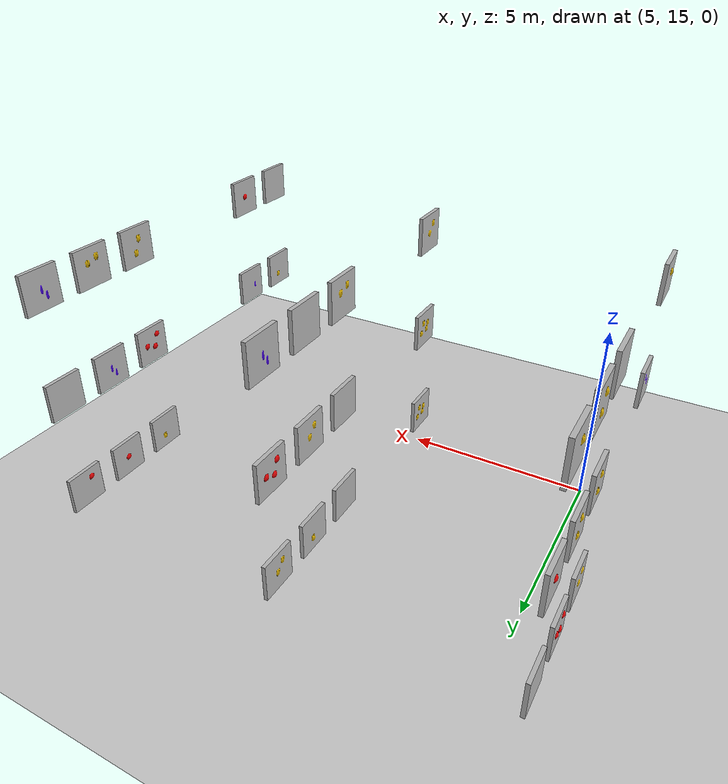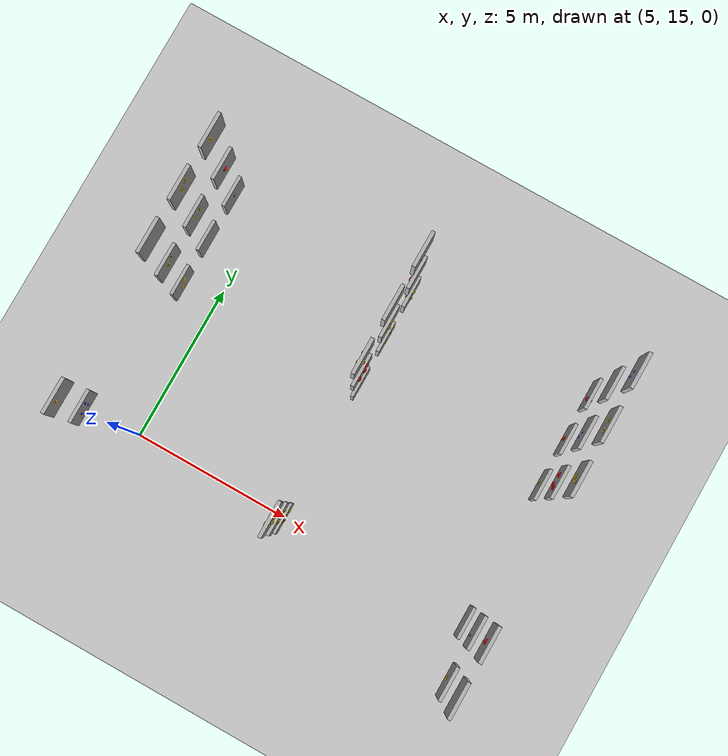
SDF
<sdf version="1.7">
 <world name="default">
  <model name="ground_plane">
   <static>1</static>
   <link name="link">
    <collision name="collision">
     <geometry><plane><normal>0 0 1</normal><size>100 100</size></plane></geometry>
     <surface>
      <contact><collide_bitmask>65535</collide_bitmask></contact>
      <friction><ode><mu>100</mu><mu2>50</mu2></ode></friction>
     </surface>
    </collision>
    <visual name="visual">
     <cast_shadows>0</cast_shadows>
     <geometry><plane><normal>0 0 1</normal><size>100 100</size></plane></geometry>
     <material>
      <script><uri>file://media/materials/scripts/gazebo.material</uri><name>Gazebo/Grey</name></script>
     </material>
    </visual>
   </link>
  </model>
  <model name="plant_6">
   <link name="eggplant_4">
    <inertial>
     <mass>1</mass>
     <inertia><ixx>10</ixx><ixy>0</ixy><ixz>0</ixz><iyy>10</iyy><iyz>0</iyz><izz>10</izz></inertia>
    </inertial>
    <collision name="eggplant_4_collision">
     <geometry>
      <mesh>
       <scale>1 1 1</scale>
       <uri>/root/sim_ws/src/icuas24_competition/models/eggplant_4/eggplant_4.dae</uri>
      </mesh>
     </geometry>
    </collision>
    <visual name="eggplant_4_visual">
     <geometry>
      <mesh>
       <scale>1 1 1</scale>
       <uri>/root/sim_ws/src/icuas24_competition/models/eggplant_4/eggplant_4.dae</uri>
      </mesh>
     </geometry>
    </visual>
   </link>
   <static>1</static>
   <pose>4 15 3.9 0 0 -1.5707</pose>
  </model>
  <model name="plant_9">
   <link name="pepper_1">
    <inertial>
     <mass>1</mass>
     <inertia><ixx>10</ixx><ixy>0</ixy><ixz>0</ixz><iyy>10</iyy><iyz>0</iyz><izz>10</izz></inertia>
    </inertial>
    <collision name="pepper_1_collision">
     <geometry>
      <mesh><scale>1 1 1</scale><uri>/root/sim_ws/src/icuas24_competition/models/pepper_1/pepper_1.dae</uri></mesh>
     </geometry>
    </collision>
    <visual name="pepper_1_visual">
     <geometry>
      <mesh><scale>1 1 1</scale><uri>/root/sim_ws/src/icuas24_competition/models/pepper_1/pepper_1.dae</uri></mesh>
     </geometry>
    </visual>
   </link>
   <static>1</static>
   <pose>4 15 6.7 0 0 -1.5707</pose>
  </model>
  <model name="plant_10">
   <link name="pepper_4">
    <inertial>
     <mass>1</mass>
     <inertia><ixx>10</ixx><ixy>0</ixy><ixz>0</ixz><iyy>10</iyy><iyz>0</iyz><izz>10</izz></inertia>
    </inertial>
    <collision name="pepper_4_collision">
     <geometry>
      <mesh><scale>1 1 1</scale><uri>/root/sim_ws/src/icuas24_competition/models/pepper_4/pepper_4.dae</uri></mesh>
     </geometry>
    </collision>
    <visual name="pepper_4_visual">
     <geometry>
      <mesh><scale>1 1 1</scale><uri>/root/sim_ws/src/icuas24_competition/models/pepper_4/pepper_4.dae</uri></mesh>
     </geometry>
    </visual>
   </link>
   <static>1</static>
   <pose>4 19.5 1.1 0 -0 1.5707</pose>
  </model>
  <model name="plant_11">
   <link name="tomato_3">
    <inertial>
     <mass>1</mass>
     <inertia><ixx>10</ixx><ixy>0</ixy><ixz>0</ixz><iyy>10</iyy><iyz>0</iyz><izz>10</izz></inertia>
    </inertial>
    <collision name="tomato_3_collision">
     <geometry>
      <mesh><scale>1 1 1</scale><uri>/root/sim_ws/src/icuas24_competition/models/tomato_3/tomato_3.dae</uri></mesh>
     </geometry>
    </collision>
    <visual name="tomato_3_visual">
     <geometry>
      <mesh><scale>1 1 1</scale><uri>/root/sim_ws/src/icuas24_competition/models/tomato_3/tomato_3.dae</uri></mesh>
     </geometry>
    </visual>
   </link>
   <static>1</static>
   <pose>4 21 1.1 0 -0 1.5707</pose>
  </model>
  <model name="plant_12">
   <link name="eggplant_1">
    <inertial>
     <mass>1</mass>
     <inertia><ixx>10</ixx><ixy>0</ixy><ixz>0</ixz><iyy>10</iyy><iyz>0</iyz><izz>10</izz></inertia>
    </inertial>
    <collision name="eggplant_1_collision">
     <geometry>
      <mesh>
       <scale>1 1 1</scale>
       <uri>/root/sim_ws/src/icuas24_competition/models/eggplant_1/eggplant_1.dae</uri>
      </mesh>
     </geometry>
    </collision>
    <visual name="eggplant_1_visual">
     <geometry>
      <mesh>
       <scale>1 1 1</scale>
       <uri>/root/sim_ws/src/icuas24_competition/models/eggplant_1/eggplant_1.dae</uri>
      </mesh>
     </geometry>
    </visual>
   </link>
   <static>1</static>
   <pose>4 22.5 1.1 0 0 -1.5707</pose>
  </model>
  <model name="plant_13">
   <link name="pepper_4">
    <inertial>
     <mass>1</mass>
     <inertia><ixx>10</ixx><ixy>0</ixy><ixz>0</ixz><iyy>10</iyy><iyz>0</iyz><izz>10</izz></inertia>
    </inertial>
    <collision name="pepper_4_collision">
     <geometry>
      <mesh><scale>1 1 1</scale><uri>/root/sim_ws/src/icuas24_competition/models/pepper_4/pepper_4.dae</uri></mesh>
     </geometry>
    </collision>
    <visual name="pepper_4_visual">
     <geometry>
      <mesh><scale>1 1 1</scale><uri>/root/sim_ws/src/icuas24_competition/models/pepper_4/pepper_4.dae</uri></mesh>
     </geometry>
    </visual>
   </link>
   <static>1</static>
   <pose>4 19.5 3.9 0 0 -1.5707</pose>
  </model>
  <model name="plant_14">
   <link name="pepper_4">
    <inertial>
     <mass>1</mass>
     <inertia><ixx>10</ixx><ixy>0</ixy><ixz>0</ixz><iyy>10</iyy><iyz>0</iyz><izz>10</izz></inertia>
    </inertial>
    <collision name="pepper_4_collision">
     <geometry>
      <mesh><scale>1 1 1</scale><uri>/root/sim_ws/src/icuas24_competition/models/pepper_4/pepper_4.dae</uri></mesh>
     </geometry>
    </collision>
    <visual name="pepper_4_visual">
     <geometry>
      <mesh><scale>1 1 1</scale><uri>/root/sim_ws/src/icuas24_competition/models/pepper_4/pepper_4.dae</uri></mesh>
     </geometry>
    </visual>
   </link>
   <static>1</static>
   <pose>4 21 3.9 0 0 -1.5707</pose>
  </model>
  <model name="plant_15">
   <link name="tomato_1">
    <inertial>
     <mass>1</mass>
     <inertia><ixx>10</ixx><ixy>0</ixy><ixz>0</ixz><iyy>10</iyy><iyz>0</iyz><izz>10</izz></inertia>
    </inertial>
    <collision name="tomato_1_collision">
     <geometry>
      <mesh><scale>1 1 1</scale><uri>/root/sim_ws/src/icuas24_competition/models/tomato_1/tomato_1.dae</uri></mesh>
     </geometry>
    </collision>
    <visual name="tomato_1_visual">
     <geometry>
      <mesh><scale>1 1 1</scale><uri>/root/sim_ws/src/icuas24_competition/models/tomato_1/tomato_1.dae</uri></mesh>
     </geometry>
    </visual>
   </link>
   <static>1</static>
   <pose>4 22.5 3.9 0 0 -1.5707</pose>
  </model>
  <model name="plant_16">
   <link name="plant">
    <inertial>
     <mass>1</mass>
     <inertia><ixx>10</ixx><ixy>0</ixy><ixz>0</ixz><iyy>10</iyy><iyz>0</iyz><izz>10</izz></inertia>
    </inertial>
    <collision name="plant_collision">
     <geometry>
      <mesh><scale>1 1 1</scale><uri>/root/sim_ws/src/icuas24_competition/models/plant/plant_base.dae</uri></mesh>
     </geometry>
    </collision>
    <visual name="plant_visual">
     <geometry>
      <mesh><scale>1 1 1</scale><uri>/root/sim_ws/src/icuas24_competition/models/plant/plant_base.dae</uri></mesh>
     </geometry>
    </visual>
   </link>
   <static>1</static>
   <pose>4 19.5 6.7 0 0 -1.5707</pose>
  </model>
  <model name="plant_17">
   <link name="pepper_4">
    <inertial>
     <mass>1</mass>
     <inertia><ixx>10</ixx><ixy>0</ixy><ixz>0</ixz><iyy>10</iyy><iyz>0</iyz><izz>10</izz></inertia>
    </inertial>
    <collision name="pepper_4_collision">
     <geometry>
      <mesh><scale>1 1 1</scale><uri>/root/sim_ws/src/icuas24_competition/models/pepper_4/pepper_4.dae</uri></mesh>
     </geometry>
    </collision>
    <visual name="pepper_4_visual">
     <geometry>
      <mesh><scale>1 1 1</scale><uri>/root/sim_ws/src/icuas24_competition/models/pepper_4/pepper_4.dae</uri></mesh>
     </geometry>
    </visual>
   </link>
   <static>1</static>
   <pose>4 21 6.7 0 0 -1.5707</pose>
  </model>
  <model name="plant_18">
   <link name="pepper_1">
    <inertial>
     <mass>1</mass>
     <inertia><ixx>10</ixx><ixy>0</ixy><ixz>0</ixz><iyy>10</iyy><iyz>0</iyz><izz>10</izz></inertia>
    </inertial>
    <collision name="pepper_1_collision">
     <geometry>
      <mesh><scale>1 1 1</scale><uri>/root/sim_ws/src/icuas24_competition/models/pepper_1/pepper_1.dae</uri></mesh>
     </geometry>
    </collision>
    <visual name="pepper_1_visual">
     <geometry>
      <mesh><scale>1 1 1</scale><uri>/root/sim_ws/src/icuas24_competition/models/pepper_1/pepper_1.dae</uri></mesh>
     </geometry>
    </visual>
   </link>
   <static>1</static>
   <pose>4 22.5 6.7 0 0 -1.5707</pose>
  </model>
  <model name="plant_30">
   <link name="pepper_2">
    <inertial>
     <mass>1</mass>
     <inertia><ixx>10</ixx><ixy>0</ixy><ixz>0</ixz><iyy>10</iyy><iyz>0</iyz><izz>10</izz></inertia>
    </inertial>
    <collision name="pepper_2_collision">
     <geometry>
      <mesh><scale>1 1 1</scale><uri>/root/sim_ws/src/icuas24_competition/models/pepper_2/pepper_2.dae</uri></mesh>
     </geometry>
    </collision>
    <visual name="pepper_2_visual">
     <geometry>
      <mesh><scale>1 1 1</scale><uri>/root/sim_ws/src/icuas24_competition/models/pepper_2/pepper_2.dae</uri></mesh>
     </geometry>
    </visual>
   </link>
   <static>1</static>
   <pose>10 15 1.1 0 0 -1.5707</pose>
  </model>
  <model name="plant_33">
   <link name="pepper_2">
    <inertial>
     <mass>1</mass>
     <inertia><ixx>10</ixx><ixy>0</ixy><ixz>0</ixz><iyy>10</iyy><iyz>0</iyz><izz>10</izz></inertia>
    </inertial>
    <collision name="pepper_2_collision">
     <geometry>
      <mesh><scale>1 1 1</scale><uri>/root/sim_ws/src/icuas24_competition/models/pepper_2/pepper_2.dae</uri></mesh>
     </geometry>
    </collision>
    <visual name="pepper_2_visual">
     <geometry>
      <mesh><scale>1 1 1</scale><uri>/root/sim_ws/src/icuas24_competition/models/pepper_2/pepper_2.dae</uri></mesh>
     </geometry>
    </visual>
   </link>
   <static>1</static>
   <pose>10 15 3.9 0 0 -1.5707</pose>
  </model>
  <model name="plant_36">
   <link name="pepper_4">
    <inertial>
     <mass>1</mass>
     <inertia><ixx>10</ixx><ixy>0</ixy><ixz>0</ixz><iyy>10</iyy><iyz>0</iyz><izz>10</izz></inertia>
    </inertial>
    <collision name="pepper_4_collision">
     <geometry>
      <mesh><scale>1 1 1</scale><uri>/root/sim_ws/src/icuas24_competition/models/pepper_4/pepper_4.dae</uri></mesh>
     </geometry>
    </collision>
    <visual name="pepper_4_visual">
     <geometry>
      <mesh><scale>1 1 1</scale><uri>/root/sim_ws/src/icuas24_competition/models/pepper_4/pepper_4.dae</uri></mesh>
     </geometry>
    </visual>
   </link>
   <static>1</static>
   <pose>10 15 6.7 0 -0 1.5707</pose>
  </model>
  <model name="plant_37">
   <link name="plant">
    <inertial>
     <mass>1</mass>
     <inertia><ixx>10</ixx><ixy>0</ixy><ixz>0</ixz><iyy>10</iyy><iyz>0</iyz><izz>10</izz></inertia>
    </inertial>
    <collision name="plant_collision">
     <geometry>
      <mesh><scale>1 1 1</scale><uri>/root/sim_ws/src/icuas24_competition/models/plant/plant_base.dae</uri></mesh>
     </geometry>
    </collision>
    <visual name="plant_visual">
     <geometry>
      <mesh><scale>1 1 1</scale><uri>/root/sim_ws/src/icuas24_competition/models/plant/plant_base.dae</uri></mesh>
     </geometry>
    </visual>
   </link>
   <static>1</static>
   <pose>10 19.5 1.1 0 0 -1.5707</pose>
  </model>
  <model name="plant_38">
   <link name="pepper_3">
    <inertial>
     <mass>1</mass>
     <inertia><ixx>10</ixx><ixy>0</ixy><ixz>0</ixz><iyy>10</iyy><iyz>0</iyz><izz>10</izz></inertia>
    </inertial>
    <collision name="pepper_3_collision">
     <geometry>
      <mesh><scale>1 1 1</scale><uri>/root/sim_ws/src/icuas24_competition/models/pepper_3/pepper_3.dae</uri></mesh>
     </geometry>
    </collision>
    <visual name="pepper_3_visual">
     <geometry>
      <mesh><scale>1 1 1</scale><uri>/root/sim_ws/src/icuas24_competition/models/pepper_3/pepper_3.dae</uri></mesh>
     </geometry>
    </visual>
   </link>
   <static>1</static>
   <pose>10 21 1.1 0 0 -1.5707</pose>
  </model>
  <model name="plant_39">
   <link name="pepper_4">
    <inertial>
     <mass>1</mass>
     <inertia><ixx>10</ixx><ixy>0</ixy><ixz>0</ixz><iyy>10</iyy><iyz>0</iyz><izz>10</izz></inertia>
    </inertial>
    <collision name="pepper_4_collision">
     <geometry>
      <mesh><scale>1 1 1</scale><uri>/root/sim_ws/src/icuas24_competition/models/pepper_4/pepper_4.dae</uri></mesh>
     </geometry>
    </collision>
    <visual name="pepper_4_visual">
     <geometry>
      <mesh><scale>1 1 1</scale><uri>/root/sim_ws/src/icuas24_competition/models/pepper_4/pepper_4.dae</uri></mesh>
     </geometry>
    </visual>
   </link>
   <static>1</static>
   <pose>10 22.5 1.1 0 -0 1.5707</pose>
  </model>
  <model name="plant_40">
   <link name="tomato_3">
    <inertial>
     <mass>1</mass>
     <inertia><ixx>10</ixx><ixy>0</ixy><ixz>0</ixz><iyy>10</iyy><iyz>0</iyz><izz>10</izz></inertia>
    </inertial>
    <collision name="tomato_3_collision">
     <geometry>
      <mesh><scale>1 1 1</scale><uri>/root/sim_ws/src/icuas24_competition/models/tomato_3/tomato_3.dae</uri></mesh>
     </geometry>
    </collision>
    <visual name="tomato_3_visual">
     <geometry>
      <mesh><scale>1 1 1</scale><uri>/root/sim_ws/src/icuas24_competition/models/tomato_3/tomato_3.dae</uri></mesh>
     </geometry>
    </visual>
   </link>
   <static>1</static>
   <pose>10 19.5 3.9 0 0 -1.5707</pose>
  </model>
  <model name="plant_41">
   <link name="pepper_4">
    <inertial>
     <mass>1</mass>
     <inertia><ixx>10</ixx><ixy>0</ixy><ixz>0</ixz><iyy>10</iyy><iyz>0</iyz><izz>10</izz></inertia>
    </inertial>
    <collision name="pepper_4_collision">
     <geometry>
      <mesh><scale>1 1 1</scale><uri>/root/sim_ws/src/icuas24_competition/models/pepper_4/pepper_4.dae</uri></mesh>
     </geometry>
    </collision>
    <visual name="pepper_4_visual">
     <geometry>
      <mesh><scale>1 1 1</scale><uri>/root/sim_ws/src/icuas24_competition/models/pepper_4/pepper_4.dae</uri></mesh>
     </geometry>
    </visual>
   </link>
   <static>1</static>
   <pose>10 21 3.9 0 -0 1.5707</pose>
  </model>
  <model name="plant_42">
   <link name="tomato_3">
    <inertial>
     <mass>1</mass>
     <inertia><ixx>10</ixx><ixy>0</ixy><ixz>0</ixz><iyy>10</iyy><iyz>0</iyz><izz>10</izz></inertia>
    </inertial>
    <collision name="tomato_3_collision">
     <geometry>
      <mesh><scale>1 1 1</scale><uri>/root/sim_ws/src/icuas24_competition/models/tomato_3/tomato_3.dae</uri></mesh>
     </geometry>
    </collision>
    <visual name="tomato_3_visual">
     <geometry>
      <mesh><scale>1 1 1</scale><uri>/root/sim_ws/src/icuas24_competition/models/tomato_3/tomato_3.dae</uri></mesh>
     </geometry>
    </visual>
   </link>
   <static>1</static>
   <pose>10 22.5 3.9 0 -0 1.5707</pose>
  </model>
  <model name="plant_43">
   <link name="pepper_3">
    <inertial>
     <mass>1</mass>
     <inertia><ixx>10</ixx><ixy>0</ixy><ixz>0</ixz><iyy>10</iyy><iyz>0</iyz><izz>10</izz></inertia>
    </inertial>
    <collision name="pepper_3_collision">
     <geometry>
      <mesh><scale>1 1 1</scale><uri>/root/sim_ws/src/icuas24_competition/models/pepper_3/pepper_3.dae</uri></mesh>
     </geometry>
    </collision>
    <visual name="pepper_3_visual">
     <geometry>
      <mesh><scale>1 1 1</scale><uri>/root/sim_ws/src/icuas24_competition/models/pepper_3/pepper_3.dae</uri></mesh>
     </geometry>
    </visual>
   </link>
   <static>1</static>
   <pose>10 19.5 6.7 0 -0 1.5707</pose>
  </model>
  <model name="plant_44">
   <link name="plant">
    <inertial>
     <mass>1</mass>
     <inertia><ixx>10</ixx><ixy>0</ixy><ixz>0</ixz><iyy>10</iyy><iyz>0</iyz><izz>10</izz></inertia>
    </inertial>
    <collision name="plant_collision">
     <geometry>
      <mesh><scale>1 1 1</scale><uri>/root/sim_ws/src/icuas24_competition/models/plant/plant_base.dae</uri></mesh>
     </geometry>
    </collision>
    <visual name="plant_visual">
     <geometry>
      <mesh><scale>1 1 1</scale><uri>/root/sim_ws/src/icuas24_competition/models/plant/plant_base.dae</uri></mesh>
     </geometry>
    </visual>
   </link>
   <static>1</static>
   <pose>10 21 6.7 0 0 -1.5707</pose>
  </model>
  <model name="plant_45">
   <link name="eggplant_2">
    <inertial>
     <mass>1</mass>
     <inertia><ixx>10</ixx><ixy>0</ixy><ixz>0</ixz><iyy>10</iyy><iyz>0</iyz><izz>10</izz></inertia>
    </inertial>
    <collision name="eggplant_2_collision">
     <geometry>
      <mesh>
       <scale>1 1 1</scale>
       <uri>/root/sim_ws/src/icuas24_competition/models/eggplant_2/eggplant_2.dae</uri>
      </mesh>
     </geometry>
    </collision>
    <visual name="eggplant_2_visual">
     <geometry>
      <mesh>
       <scale>1 1 1</scale>
       <uri>/root/sim_ws/src/icuas24_competition/models/eggplant_2/eggplant_2.dae</uri>
      </mesh>
     </geometry>
    </visual>
   </link>
   <static>1</static>
   <pose>10 22.5 6.7 0 -0 1.5707</pose>
  </model>
  <model name="plant_57">
   <link name="eggplant_1">
    <inertial>
     <mass>1</mass>
     <inertia><ixx>10</ixx><ixy>0</ixy><ixz>0</ixz><iyy>10</iyy><iyz>0</iyz><izz>10</izz></inertia>
    </inertial>
    <collision name="eggplant_1_collision">
     <geometry>
      <mesh>
       <scale>1 1 1</scale>
       <uri>/root/sim_ws/src/icuas24_competition/models/eggplant_1/eggplant_1.dae</uri>
      </mesh>
     </geometry>
    </collision>
    <visual name="eggplant_1_visual">
     <geometry>
      <mesh>
       <scale>1 1 1</scale>
       <uri>/root/sim_ws/src/icuas24_competition/models/eggplant_1/eggplant_1.dae</uri>
      </mesh>
     </geometry>
    </visual>
   </link>
   <static>1</static>
   <pose>16 15 1.1 0 0 -1.5707</pose>
  </model>
  <model name="plant_59">
   <link name="pepper_3">
    <inertial>
     <mass>1</mass>
     <inertia><ixx>10</ixx><ixy>0</ixy><ixz>0</ixz><iyy>10</iyy><iyz>0</iyz><izz>10</izz></inertia>
    </inertial>
    <collision name="pepper_3_collision">
     <geometry>
      <mesh><scale>1 1 1</scale><uri>/root/sim_ws/src/icuas24_competition/models/pepper_3/pepper_3.dae</uri></mesh>
     </geometry>
    </collision>
    <visual name="pepper_3_visual">
     <geometry>
      <mesh><scale>1 1 1</scale><uri>/root/sim_ws/src/icuas24_competition/models/pepper_3/pepper_3.dae</uri></mesh>
     </geometry>
    </visual>
   </link>
   <static>1</static>
   <pose>16 13.5 3.9 0 0 -1.5707</pose>
  </model>
  <model name="plant_60">
   <link name="eggplant_3">
    <inertial>
     <mass>1</mass>
     <inertia><ixx>10</ixx><ixy>0</ixy><ixz>0</ixz><iyy>10</iyy><iyz>0</iyz><izz>10</izz></inertia>
    </inertial>
    <collision name="eggplant_3_collision">
     <geometry>
      <mesh>
       <scale>1 1 1</scale>
       <uri>/root/sim_ws/src/icuas24_competition/models/eggplant_3/eggplant_3.dae</uri>
      </mesh>
     </geometry>
    </collision>
    <visual name="eggplant_3_visual">
     <geometry>
      <mesh>
       <scale>1 1 1</scale>
       <uri>/root/sim_ws/src/icuas24_competition/models/eggplant_3/eggplant_3.dae</uri>
      </mesh>
     </geometry>
    </visual>
   </link>
   <static>1</static>
   <pose>16 15 3.9 0 0 -1.5707</pose>
  </model>
  <model name="plant_62">
   <link name="eggplant_1">
    <inertial>
     <mass>1</mass>
     <inertia><ixx>10</ixx><ixy>0</ixy><ixz>0</ixz><iyy>10</iyy><iyz>0</iyz><izz>10</izz></inertia>
    </inertial>
    <collision name="eggplant_1_collision">
     <geometry>
      <mesh>
       <scale>1 1 1</scale>
       <uri>/root/sim_ws/src/icuas24_competition/models/eggplant_1/eggplant_1.dae</uri>
      </mesh>
     </geometry>
    </collision>
    <visual name="eggplant_1_visual">
     <geometry>
      <mesh>
       <scale>1 1 1</scale>
       <uri>/root/sim_ws/src/icuas24_competition/models/eggplant_1/eggplant_1.dae</uri>
      </mesh>
     </geometry>
    </visual>
   </link>
   <static>1</static>
   <pose>16 13.5 6.7 0 0 -1.5707</pose>
  </model>
  <model name="plant_63">
   <link name="tomato_1">
    <inertial>
     <mass>1</mass>
     <inertia><ixx>10</ixx><ixy>0</ixy><ixz>0</ixz><iyy>10</iyy><iyz>0</iyz><izz>10</izz></inertia>
    </inertial>
    <collision name="tomato_1_collision">
     <geometry>
      <mesh><scale>1 1 1</scale><uri>/root/sim_ws/src/icuas24_competition/models/tomato_1/tomato_1.dae</uri></mesh>
     </geometry>
    </collision>
    <visual name="tomato_1_visual">
     <geometry>
      <mesh><scale>1 1 1</scale><uri>/root/sim_ws/src/icuas24_competition/models/tomato_1/tomato_1.dae</uri></mesh>
     </geometry>
    </visual>
   </link>
   <static>1</static>
   <pose>16 15 6.7 0 0 -1.5707</pose>
  </model>
  <model name="plant_64">
   <link name="pepper_3">
    <inertial>
     <mass>1</mass>
     <inertia><ixx>10</ixx><ixy>0</ixy><ixz>0</ixz><iyy>10</iyy><iyz>0</iyz><izz>10</izz></inertia>
    </inertial>
    <collision name="pepper_3_collision">
     <geometry>
      <mesh><scale>1 1 1</scale><uri>/root/sim_ws/src/icuas24_competition/models/pepper_3/pepper_3.dae</uri></mesh>
     </geometry>
    </collision>
    <visual name="pepper_3_visual">
     <geometry>
      <mesh><scale>1 1 1</scale><uri>/root/sim_ws/src/icuas24_competition/models/pepper_3/pepper_3.dae</uri></mesh>
     </geometry>
    </visual>
   </link>
   <static>1</static>
   <pose>16 19.5 1.1 0 0 -1.5707</pose>
  </model>
  <model name="plant_65">
   <link name="tomato_1">
    <inertial>
     <mass>1</mass>
     <inertia><ixx>10</ixx><ixy>0</ixy><ixz>0</ixz><iyy>10</iyy><iyz>0</iyz><izz>10</izz></inertia>
    </inertial>
    <collision name="tomato_1_collision">
     <geometry>
      <mesh><scale>1 1 1</scale><uri>/root/sim_ws/src/icuas24_competition/models/tomato_1/tomato_1.dae</uri></mesh>
     </geometry>
    </collision>
    <visual name="tomato_1_visual">
     <geometry>
      <mesh><scale>1 1 1</scale><uri>/root/sim_ws/src/icuas24_competition/models/tomato_1/tomato_1.dae</uri></mesh>
     </geometry>
    </visual>
   </link>
   <static>1</static>
   <pose>16 21 1.1 0 0 -1.5707</pose>
  </model>
  <model name="plant_66">
   <link name="tomato_2">
    <inertial>
     <mass>1</mass>
     <inertia><ixx>10</ixx><ixy>0</ixy><ixz>0</ixz><iyy>10</iyy><iyz>0</iyz><izz>10</izz></inertia>
    </inertial>
    <collision name="tomato_2_collision">
     <geometry>
      <mesh><scale>1 1 1</scale><uri>/root/sim_ws/src/icuas24_competition/models/tomato_2/tomato_2.dae</uri></mesh>
     </geometry>
    </collision>
    <visual name="tomato_2_visual">
     <geometry>
      <mesh><scale>1 1 1</scale><uri>/root/sim_ws/src/icuas24_competition/models/tomato_2/tomato_2.dae</uri></mesh>
     </geometry>
    </visual>
   </link>
   <static>1</static>
   <pose>16 22.5 1.1 0 0 -1.5707</pose>
  </model>
  <model name="plant_67">
   <link name="tomato_3">
    <inertial>
     <mass>1</mass>
     <inertia><ixx>10</ixx><ixy>0</ixy><ixz>0</ixz><iyy>10</iyy><iyz>0</iyz><izz>10</izz></inertia>
    </inertial>
    <collision name="tomato_3_collision">
     <geometry>
      <mesh><scale>1 1 1</scale><uri>/root/sim_ws/src/icuas24_competition/models/tomato_3/tomato_3.dae</uri></mesh>
     </geometry>
    </collision>
    <visual name="tomato_3_visual">
     <geometry>
      <mesh><scale>1 1 1</scale><uri>/root/sim_ws/src/icuas24_competition/models/tomato_3/tomato_3.dae</uri></mesh>
     </geometry>
    </visual>
   </link>
   <static>1</static>
   <pose>16 19.5 3.9 0 -0 1.5707</pose>
  </model>
  <model name="plant_68">
   <link name="eggplant_2">
    <inertial>
     <mass>1</mass>
     <inertia><ixx>10</ixx><ixy>0</ixy><ixz>0</ixz><iyy>10</iyy><iyz>0</iyz><izz>10</izz></inertia>
    </inertial>
    <collision name="eggplant_2_collision">
     <geometry>
      <mesh>
       <scale>1 1 1</scale>
       <uri>/root/sim_ws/src/icuas24_competition/models/eggplant_2/eggplant_2.dae</uri>
      </mesh>
     </geometry>
    </collision>
    <visual name="eggplant_2_visual">
     <geometry>
      <mesh>
       <scale>1 1 1</scale>
       <uri>/root/sim_ws/src/icuas24_competition/models/eggplant_2/eggplant_2.dae</uri>
      </mesh>
     </geometry>
    </visual>
   </link>
   <static>1</static>
   <pose>16 21 3.9 0 -0 1.5707</pose>
  </model>
  <model name="plant_69">
   <link name="plant">
    <inertial>
     <mass>1</mass>
     <inertia><ixx>10</ixx><ixy>0</ixy><ixz>0</ixz><iyy>10</iyy><iyz>0</iyz><izz>10</izz></inertia>
    </inertial>
    <collision name="plant_collision">
     <geometry>
      <mesh><scale>1 1 1</scale><uri>/root/sim_ws/src/icuas24_competition/models/plant/plant_base.dae</uri></mesh>
     </geometry>
    </collision>
    <visual name="plant_visual">
     <geometry>
      <mesh><scale>1 1 1</scale><uri>/root/sim_ws/src/icuas24_competition/models/plant/plant_base.dae</uri></mesh>
     </geometry>
    </visual>
   </link>
   <static>1</static>
   <pose>16 22.5 3.9 0 -0 1.5707</pose>
  </model>
  <model name="plant_70">
   <link name="pepper_4">
    <inertial>
     <mass>1</mass>
     <inertia><ixx>10</ixx><ixy>0</ixy><ixz>0</ixz><iyy>10</iyy><iyz>0</iyz><izz>10</izz></inertia>
    </inertial>
    <collision name="pepper_4_collision">
     <geometry>
      <mesh><scale>1 1 1</scale><uri>/root/sim_ws/src/icuas24_competition/models/pepper_4/pepper_4.dae</uri></mesh>
     </geometry>
    </collision>
    <visual name="pepper_4_visual">
     <geometry>
      <mesh><scale>1 1 1</scale><uri>/root/sim_ws/src/icuas24_competition/models/pepper_4/pepper_4.dae</uri></mesh>
     </geometry>
    </visual>
   </link>
   <static>1</static>
   <pose>16 19.5 6.7 0 0 -1.5707</pose>
  </model>
  <model name="plant_71">
   <link name="pepper_3">
    <inertial>
     <mass>1</mass>
     <inertia><ixx>10</ixx><ixy>0</ixy><ixz>0</ixz><iyy>10</iyy><iyz>0</iyz><izz>10</izz></inertia>
    </inertial>
    <collision name="pepper_3_collision">
     <geometry>
      <mesh><scale>1 1 1</scale><uri>/root/sim_ws/src/icuas24_competition/models/pepper_3/pepper_3.dae</uri></mesh>
     </geometry>
    </collision>
    <visual name="pepper_3_visual">
     <geometry>
      <mesh><scale>1 1 1</scale><uri>/root/sim_ws/src/icuas24_competition/models/pepper_3/pepper_3.dae</uri></mesh>
     </geometry>
    </visual>
   </link>
   <static>1</static>
   <pose>16 21 6.7 0 -0 1.5707</pose>
  </model>
  <model name="plant_72">
   <link name="eggplant_2">
    <inertial>
     <mass>1</mass>
     <inertia><ixx>10</ixx><ixy>0</ixy><ixz>0</ixz><iyy>10</iyy><iyz>0</iyz><izz>10</izz></inertia>
    </inertial>
    <collision name="eggplant_2_collision">
     <geometry>
      <mesh>
       <scale>1 1 1</scale>
       <uri>/root/sim_ws/src/icuas24_competition/models/eggplant_2/eggplant_2.dae</uri>
      </mesh>
     </geometry>
    </collision>
    <visual name="eggplant_2_visual">
     <geometry>
      <mesh>
       <scale>1 1 1</scale>
       <uri>/root/sim_ws/src/icuas24_competition/models/eggplant_2/eggplant_2.dae</uri>
      </mesh>
     </geometry>
    </visual>
   </link>
   <static>1</static>
   <pose>16 22.5 6.7 0 -0 1.5707</pose>
  </model>
 </world>
</sdf>
